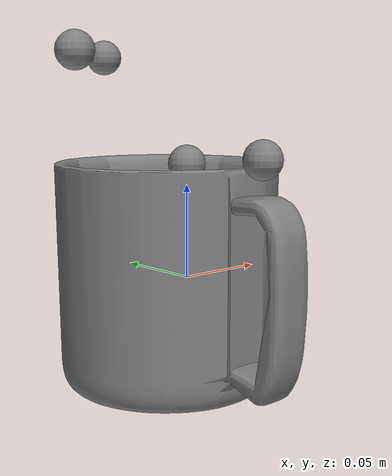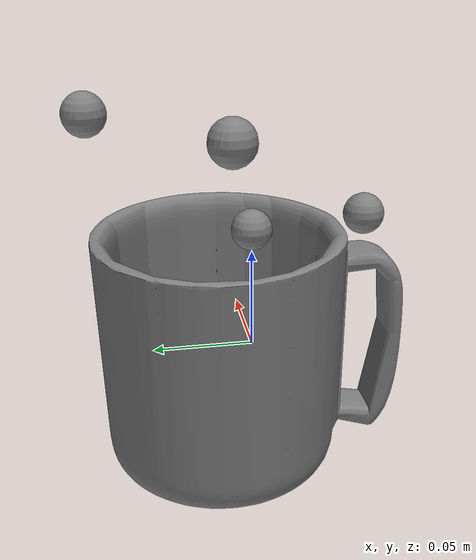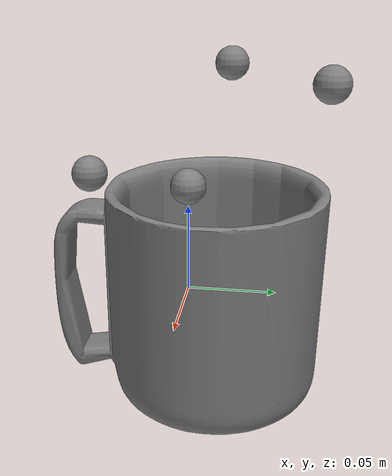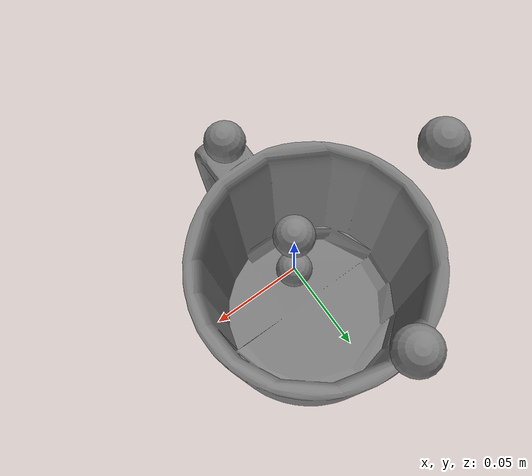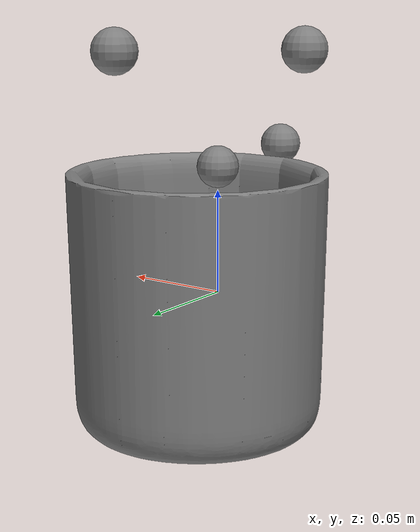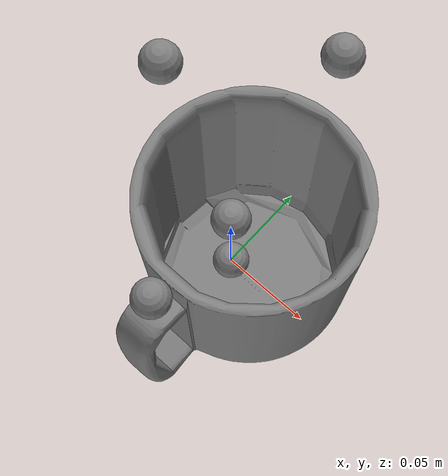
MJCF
<mujoco model="039_mug_5">
  <asset>
    <mesh name="039_mug_collision_5" file="039_mug_5.stl" scale="0.08 0.08 0.08"/>
  </asset>

  <worldbody>
<body name="039_mug_5">
  <geom name="039_mug_collision_5" type="mesh" mesh="039_mug_collision_5" />
  <site name="039_mug_5_keypoints_0" pos="0.0 0.07361376 0.11909752" size="0.01"/>
  <site name="039_mug_5_keypoints_1" pos="-0.057565200000000004 0.01763064 0.11908064" size="0.01"/>
  <site name="039_mug_5_keypoints_2" pos="0.0 -0.055163279999999995 0.06627456" size="0.01"/>
  <site name="039_mug_5_keypoints_3" pos="0.0 0.0 0.0" size="0.01"/>
  <site name="039_mug_5_keypoints_4" pos="0.0 1.8560000000000002e-05 0.06149272" size="0.01"/>
</body>
  </worldbody>
</mujoco>
